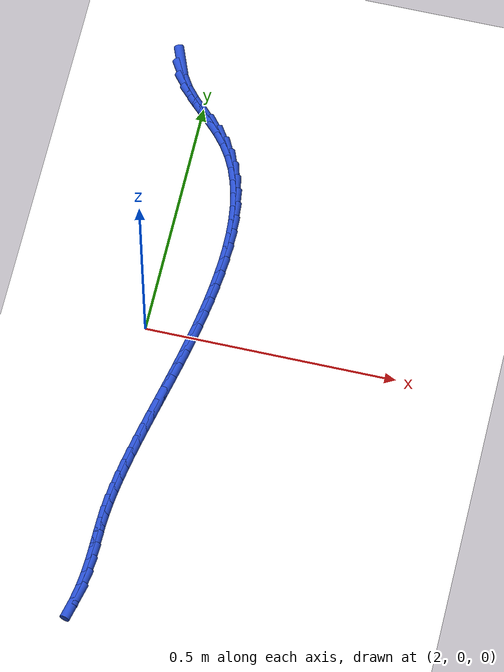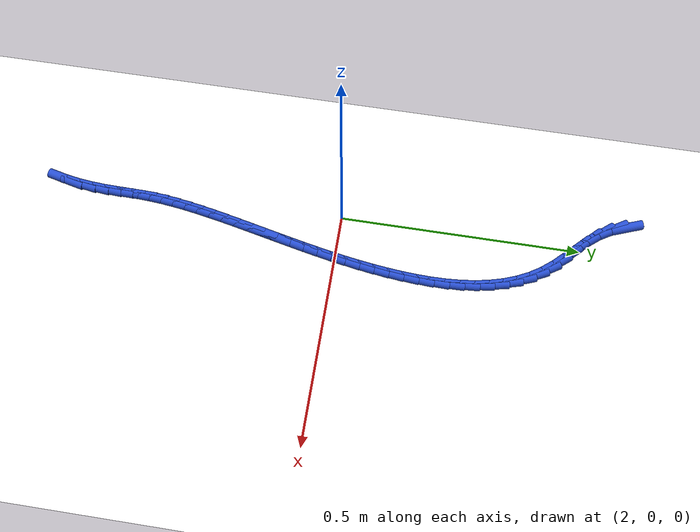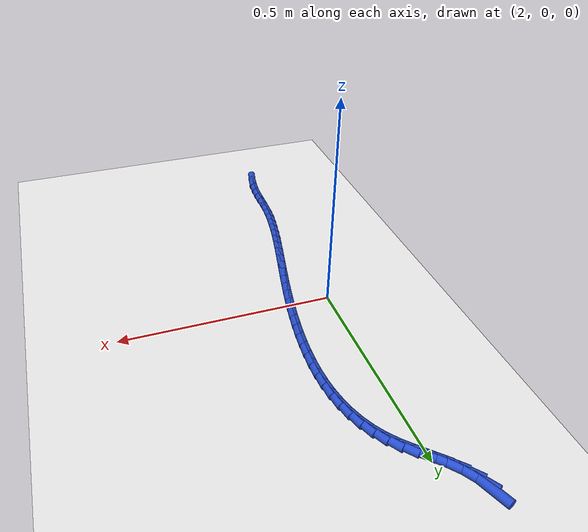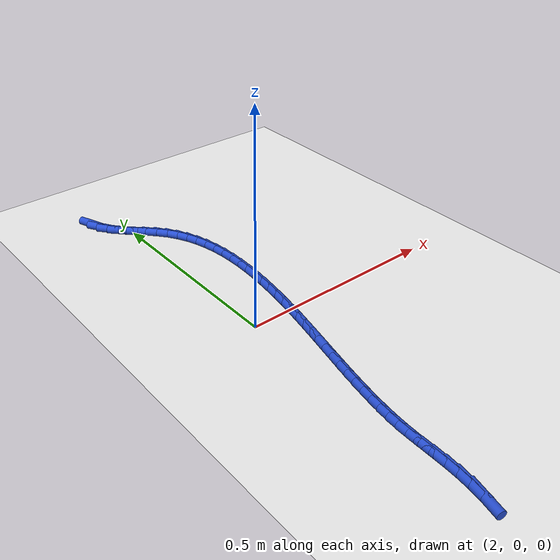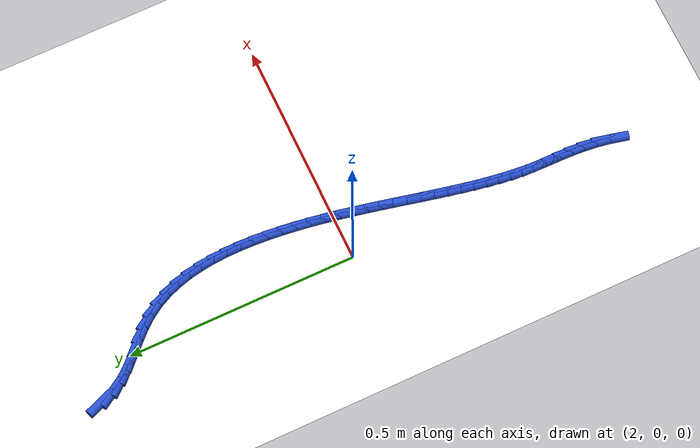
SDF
<sdf version="1.6">
 <world name="default">
  <model name="ground_plane">
   <static>1</static>
   <link name="link">
    <collision name="collision">
     <geometry><plane><normal>0 0 1</normal><size>100 100</size></plane></geometry>
     <surface><friction><ode><mu>100</mu><mu2>50</mu2></ode></friction></surface>
    </collision>
    <visual name="visual">
     <cast_shadows>0</cast_shadows>
     <geometry><plane><normal>0 0 1</normal><size>100 100</size></plane></geometry>
     <material>
      <script><uri>file://media/materials/scripts/gazebo.material</uri><name>Gazebo/WhiteGlow</name></script>
     </material>
    </visual>
   </link>
  </model>
  <model name="line">
   <link name="link_106">
    <pose>1.9338330937121684 0.5868516916136659 0.01 0 1.57 -1.2021719348651547</pose>
    <collision name="collision">
     <geometry><cylinder><radius>0.01</radius><length>0.08</length></cylinder></geometry>
    </collision>
    <visual name="visual">
     <material>
      <script><name>Gazebo/Blue</name><uri>file://media/materials/scripts/gazebo.material</uri></script>
     </material>
     <geometry><cylinder><radius>0.01</radius><length>0.08</length></cylinder></geometry>
    </visual>
   </link>
   <link name="link_107">
    <pose>1.944303896038175 0.5597450256206563 0.01 0 1.57 -1.0124511575455526</pose>
    <collision name="collision">
     <geometry><cylinder><radius>0.01</radius><length>0.08</length></cylinder></geometry>
    </collision>
    <visual name="visual">
     <material>
      <script><name>Gazebo/Blue</name><uri>file://media/materials/scripts/gazebo.material</uri></script>
     </material>
     <geometry><cylinder><radius>0.01</radius><length>0.08</length></cylinder></geometry>
    </visual>
   </link>
   <link name="link_108">
    <pose>1.9595149760566648 0.5353935296140433 0.01 0 1.57 -0.8733741682858733</pose>
    <collision name="collision">
     <geometry><cylinder><radius>0.01</radius><length>0.08</length></cylinder></geometry>
    </collision>
    <visual name="visual">
     <material>
      <script><name>Gazebo/Blue</name><uri>file://media/materials/scripts/gazebo.material</uri></script>
     </material>
     <geometry><cylinder><radius>0.01</radius><length>0.08</length></cylinder></geometry>
    </visual>
   </link>
   <link name="link_109">
    <pose>1.9782119501211322 0.5130792083223848 0.01 0 1.57 -0.7936824514714942</pose>
    <collision name="collision">
     <geometry><cylinder><radius>0.01</radius><length>0.08</length></cylinder></geometry>
    </collision>
    <visual name="visual">
     <material>
      <script><name>Gazebo/Blue</name><uri>file://media/materials/scripts/gazebo.material</uri></script>
     </material>
     <geometry><cylinder><radius>0.01</radius><length>0.08</length></cylinder></geometry>
    </visual>
   </link>
   <link name="link_110">
    <pose>1.9989690525468589 0.49197530936864375 0.01 0 1.57 -0.7694600899815649</pose>
    <collision name="collision">
     <geometry><cylinder><radius>0.01</radius><length>0.08</length></cylinder></geometry>
    </collision>
    <visual name="visual">
     <material>
      <script><name>Gazebo/Blue</name><uri>file://media/materials/scripts/gazebo.material</uri></script>
     </material>
     <geometry><cylinder><radius>0.01</radius><length>0.08</length></cylinder></geometry>
    </visual>
   </link>
   <link name="link_111">
    <pose>2.0203605176491255 0.47125508037578256 0.01 0 1.57 -0.7988840272417375</pose>
    <collision name="collision">
     <geometry><cylinder><radius>0.01</radius><length>0.08</length></cylinder></geometry>
    </collision>
    <visual name="visual">
     <material>
      <script><name>Gazebo/Blue</name><uri>file://media/materials/scripts/gazebo.material</uri></script>
     </material>
     <geometry><cylinder><radius>0.01</radius><length>0.08</length></cylinder></geometry>
    </visual>
   </link>
   <link name="link_112">
    <pose>2.0409605797432153 0.45009176896676384 0.01 0 1.57 -0.8834542762493433</pose>
    <collision name="collision">
     <geometry><cylinder><radius>0.01</radius><length>0.08</length></cylinder></geometry>
    </collision>
    <visual name="visual">
     <material>
      <script><name>Gazebo/Blue</name><uri>file://media/materials/scripts/gazebo.material</uri></script>
     </material>
     <geometry><cylinder><radius>0.01</radius><length>0.08</length></cylinder></geometry>
    </visual>
   </link>
   <link name="link_113">
    <pose>2.059364714404676 0.4276716913858878 0.01 0 1.57 -0.9982264871059049</pose>
    <collision name="collision">
     <geometry><cylinder><radius>0.01</radius><length>0.08</length></cylinder></geometry>
    </collision>
    <visual name="visual">
     <material>
      <script><name>Gazebo/Blue</name><uri>file://media/materials/scripts/gazebo.material</uri></script>
     </material>
     <geometry><cylinder><radius>0.01</radius><length>0.08</length></cylinder></geometry>
    </visual>
   </link>
   <link name="link_114">
    <pose>2.0748721948341133 0.4036141732443547 0.01 0 1.57 -1.1076831407689876</pose>
    <collision name="collision">
     <geometry><cylinder><radius>0.01</radius><length>0.08</length></cylinder></geometry>
    </collision>
    <visual name="visual">
     <material>
      <script><name>Gazebo/Blue</name><uri>file://media/materials/scripts/gazebo.material</uri></script>
     </material>
     <geometry><cylinder><radius>0.01</radius><length>0.08</length></cylinder></geometry>
    </visual>
   </link>
   <link name="link_115">
    <pose>2.0876316606838965 0.37806111030201073 0.01 0 1.57 -1.207712182106558</pose>
    <collision name="collision">
     <geometry><cylinder><radius>0.01</radius><length>0.08</length></cylinder></geometry>
    </collision>
    <visual name="visual">
     <material>
      <script><name>Gazebo/Blue</name><uri>file://media/materials/scripts/gazebo.material</uri></script>
     </material>
     <geometry><cylinder><radius>0.01</radius><length>0.08</length></cylinder></geometry>
    </visual>
   </link>
   <link name="link_116">
    <pose>2.097842429578781 0.35118557778842296 0.01 0 1.57 -1.2973108821973807</pose>
    <collision name="collision">
     <geometry><cylinder><radius>0.01</radius><length>0.08</length></cylinder></geometry>
    </collision>
    <visual name="visual">
     <material>
      <script><name>Gazebo/Blue</name><uri>file://media/materials/scripts/gazebo.material</uri></script>
     </material>
     <geometry><cylinder><radius>0.01</radius><length>0.08</length></cylinder></geometry>
    </visual>
   </link>
   <link name="link_117">
    <pose>2.105703819143523 0.3231606509331575 0.01 0 1.57 -1.3763506912121901</pose>
    <collision name="collision">
     <geometry><cylinder><radius>0.01</radius><length>0.08</length></cylinder></geometry>
    </collision>
    <visual name="visual">
     <material>
      <script><name>Gazebo/Blue</name><uri>file://media/materials/scripts/gazebo.material</uri></script>
     </material>
     <geometry><cylinder><radius>0.01</radius><length>0.08</length></cylinder></geometry>
    </visual>
   </link>
   <link name="link_118">
    <pose>2.111415147002878 0.29415940496578064 0.01 0 1.57 -1.4452845019392495</pose>
    <collision name="collision">
     <geometry><cylinder><radius>0.01</radius><length>0.08</length></cylinder></geometry>
    </collision>
    <visual name="visual">
     <material>
      <script><name>Gazebo/Blue</name><uri>file://media/materials/scripts/gazebo.material</uri></script>
     </material>
     <geometry><cylinder><radius>0.01</radius><length>0.08</length></cylinder></geometry>
    </visual>
   </link>
   <link name="link_119">
    <pose>2.115175730781602 0.2643549151158596 0.01 0 1.57 -1.5048765377039501</pose>
    <collision name="collision">
     <geometry><cylinder><radius>0.01</radius><length>0.08</length></cylinder></geometry>
    </collision>
    <visual name="visual">
     <material>
      <script><name>Gazebo/Blue</name><uri>file://media/materials/scripts/gazebo.material</uri></script>
     </material>
     <geometry><cylinder><radius>0.01</radius><length>0.08</length></cylinder></geometry>
    </visual>
   </link>
   <link name="link_120">
    <pose>2.117184888104452 0.2339202566129605 0.01 0 1.57 -1.5560022436241499</pose>
    <collision name="collision">
     <geometry><cylinder><radius>0.01</radius><length>0.08</length></cylinder></geometry>
    </collision>
    <visual name="visual">
     <material>
      <script><name>Gazebo/Blue</name><uri>file://media/materials/scripts/gazebo.material</uri></script>
     </material>
     <geometry><cylinder><radius>0.01</radius><length>0.08</length></cylinder></geometry>
    </visual>
   </link>
   <link name="link_121">
    <pose>2.1176419365961836 0.20302850468664996 0.01 0 1.57 1.5420722136107015</pose>
    <collision name="collision">
     <geometry><cylinder><radius>0.01</radius><length>0.08</length></cylinder></geometry>
    </collision>
    <visual name="visual">
     <material>
      <script><name>Gazebo/Blue</name><uri>file://media/materials/scripts/gazebo.material</uri></script>
     </material>
     <geometry><cylinder><radius>0.01</radius><length>0.08</length></cylinder></geometry>
    </visual>
   </link>
   <link name="link_122">
    <pose>2.116746193881552 0.17185273456649436 0.01 0 1.57 1.5053917749742443</pose>
    <collision name="collision">
     <geometry><cylinder><radius>0.01</radius><length>0.08</length></cylinder></geometry>
    </collision>
    <visual name="visual">
     <material>
      <script><name>Gazebo/Blue</name><uri>file://media/materials/scripts/gazebo.material</uri></script>
     </material>
     <geometry><cylinder><radius>0.01</radius><length>0.08</length></cylinder></geometry>
    </visual>
   </link>
   <link name="link_123">
    <pose>2.1146969775853144 0.14056602148205974 0.01 0 1.57 1.474880396611777</pose>
    <collision name="collision">
     <geometry><cylinder><radius>0.01</radius><length>0.08</length></cylinder></geometry>
    </collision>
    <visual name="visual">
     <material>
      <script><name>Gazebo/Blue</name><uri>file://media/materials/scripts/gazebo.material</uri></script>
     </material>
     <geometry><cylinder><radius>0.01</radius><length>0.08</length></cylinder></geometry>
    </visual>
   </link>
   <link name="link_124">
    <pose>2.111692685936342 0.10933999926450502 0.01 0 1.57 1.4490047697867123</pose>
    <collision name="collision">
     <geometry><cylinder><radius>0.01</radius><length>0.08</length></cylinder></geometry>
    </collision>
    <visual name="visual">
     <material>
      <script><name>Gazebo/Blue</name><uri>file://media/materials/scripts/gazebo.material</uri></script>
     </material>
     <geometry><cylinder><radius>0.01</radius><length>0.08</length></cylinder></geometry>
    </visual>
   </link>
   <link name="link_125">
    <pose>2.1078914042262835 0.07828310045752271 0.01 0 1.57 1.4261711757301927</pose>
    <collision name="collision">
     <geometry><cylinder><radius>0.01</radius><length>0.08</length></cylinder></geometry>
    </collision>
    <visual name="visual">
     <material>
      <script><name>Gazebo/Blue</name><uri>file://media/materials/scripts/gazebo.material</uri></script>
     </material>
     <geometry><cylinder><radius>0.01</radius><length>0.08</length></cylinder></geometry>
    </visual>
   </link>
   <link name="link_126">
    <pose>2.103396040096269 0.047417251912288995 0.01 0 1.57 1.4062611422343476</pose>
    <collision name="collision">
     <geometry><cylinder><radius>0.01</radius><length>0.08</length></cylinder></geometry>
    </collision>
    <visual name="visual">
     <material>
      <script><name>Gazebo/Blue</name><uri>file://media/materials/scripts/gazebo.material</uri></script>
     </material>
     <geometry><cylinder><radius>0.01</radius><length>0.08</length></cylinder></geometry>
    </visual>
   </link>
   <link name="link_127">
    <pose>2.098305516725162 0.01675813377203712 0.01 0 1.57 1.389263705185245</pose>
    <collision name="collision">
     <geometry><cylinder><radius>0.01</radius><length>0.08</length></cylinder></geometry>
    </collision>
    <visual name="visual">
     <material>
      <script><name>Gazebo/Blue</name><uri>file://media/materials/scripts/gazebo.material</uri></script>
     </material>
     <geometry><cylinder><radius>0.01</radius><length>0.08</length></cylinder></geometry>
    </visual>
   </link>
   <link name="link_128">
    <pose>2.0927187572918236 -0.013678573820001077 0.01 0 1.57 1.375173349856265</pose>
    <collision name="collision">
     <geometry><cylinder><radius>0.01</radius><length>0.08</length></cylinder></geometry>
    </collision>
    <visual name="visual">
     <material>
      <script><name>Gazebo/Blue</name><uri>file://media/materials/scripts/gazebo.material</uri></script>
     </material>
     <geometry><cylinder><radius>0.01</radius><length>0.08</length></cylinder></geometry>
    </visual>
   </link>
   <link name="link_129">
    <pose>2.0867346849751183 -0.04387719072059327 0.01 0 1.57 1.3639946271212693</pose>
    <collision name="collision">
     <geometry><cylinder><radius>0.01</radius><length>0.08</length></cylinder></geometry>
    </collision>
    <visual name="visual">
     <material>
      <script><name>Gazebo/Blue</name><uri>file://media/materials/scripts/gazebo.material</uri></script>
     </material>
     <geometry><cylinder><radius>0.01</radius><length>0.08</length></cylinder></geometry>
    </visual>
   </link>
   <link name="link_130">
    <pose>2.0804522229539084 -0.07382203678650719 0.01 0 1.57 1.3557462214383786</pose>
    <collision name="collision">
     <geometry><cylinder><radius>0.01</radius><length>0.08</length></cylinder></geometry>
    </collision>
    <visual name="visual">
     <material>
      <script><name>Gazebo/Blue</name><uri>file://media/materials/scripts/gazebo.material</uri></script>
     </material>
     <geometry><cylinder><radius>0.01</radius><length>0.08</length></cylinder></geometry>
    </visual>
   </link>
   <link name="link_131">
    <pose>2.0739702944070553 -0.10349743187451042 0.01 0 1.57 1.3504645923133194</pose>
    <collision name="collision">
     <geometry><cylinder><radius>0.01</radius><length>0.08</length></cylinder></geometry>
    </collision>
    <visual name="visual">
     <material>
      <script><name>Gazebo/Blue</name><uri>file://media/materials/scripts/gazebo.material</uri></script>
     </material>
     <geometry><cylinder><radius>0.01</radius><length>0.08</length></cylinder></geometry>
    </visual>
   </link>
   <link name="link_132">
    <pose>2.0673878225134223 -0.13288769584137078 0.01 0 1.57 1.3482072992607566</pose>
    <collision name="collision">
     <geometry><cylinder><radius>0.01</radius><length>0.08</length></cylinder></geometry>
    </collision>
    <visual name="visual">
     <material>
      <script><name>Gazebo/Blue</name><uri>file://media/materials/scripts/gazebo.material</uri></script>
     </material>
     <geometry><cylinder><radius>0.01</radius><length>0.08</length></cylinder></geometry>
    </visual>
   </link>
   <link name="link_133">
    <pose>2.0608037304518723 -0.16197714854385675 0.01 0 1.57 1.349056092228969</pose>
    <collision name="collision">
     <geometry><cylinder><radius>0.01</radius><length>0.08</length></cylinder></geometry>
    </collision>
    <visual name="visual">
     <material>
      <script><name>Gazebo/Blue</name><uri>file://media/materials/scripts/gazebo.material</uri></script>
     </material>
     <geometry><cylinder><radius>0.01</radius><length>0.08</length></cylinder></geometry>
    </visual>
   </link>
   <link name="link_134">
    <pose>2.0543169414012676 -0.19075010983873425 0.01 0 1.57 1.3531198047028044</pose>
    <collision name="collision">
     <geometry><cylinder><radius>0.01</radius><length>0.08</length></cylinder></geometry>
    </collision>
    <visual name="visual">
     <material>
      <script><name>Gazebo/Blue</name><uri>file://media/materials/scripts/gazebo.material</uri></script>
     </material>
     <geometry><cylinder><radius>0.01</radius><length>0.08</length></cylinder></geometry>
    </visual>
   </link>
   <link name="link_135">
    <pose>2.048026378540472 -0.219190899582772 0.01 0 1.57 1.360537021560779</pose>
    <collision name="collision">
     <geometry><cylinder><radius>0.01</radius><length>0.08</length></cylinder></geometry>
    </collision>
    <visual name="visual">
     <material>
      <script><name>Gazebo/Blue</name><uri>file://media/materials/scripts/gazebo.material</uri></script>
     </material>
     <geometry><cylinder><radius>0.01</radius><length>0.08</length></cylinder></geometry>
    </visual>
   </link>
   <link name="link_136">
    <pose>2.042030965048346 -0.24728383763273754 0.01 0 1.57 1.3714784009255272</pose>
    <collision name="collision">
     <geometry><cylinder><radius>0.01</radius><length>0.08</length></cylinder></geometry>
    </collision>
    <visual name="visual">
     <material>
      <script><name>Gazebo/Blue</name><uri>file://media/materials/scripts/gazebo.material</uri></script>
     </material>
     <geometry><cylinder><radius>0.01</radius><length>0.08</length></cylinder></geometry>
    </visual>
   </link>
   <link name="link_137">
    <pose>2.036429624103754 -0.2750132438453986 0.01 0 1.57 1.38614839767027</pose>
    <collision name="collision">
     <geometry><cylinder><radius>0.01</radius><length>0.08</length></cylinder></geometry>
    </collision>
    <visual name="visual">
     <material>
      <script><name>Gazebo/Blue</name><uri>file://media/materials/scripts/gazebo.material</uri></script>
     </material>
     <geometry><cylinder><radius>0.01</radius><length>0.08</length></cylinder></geometry>
    </visual>
   </link>
   <link name="link_138">
    <pose>2.0313212788855584 -0.30236343807752286 0.01 0 1.57 1.4047859516281196</pose>
    <collision name="collision">
     <geometry><cylinder><radius>0.01</radius><length>0.08</length></cylinder></geometry>
    </collision>
    <visual name="visual">
     <material>
      <script><name>Gazebo/Blue</name><uri>file://media/materials/scripts/gazebo.material</uri></script>
     </material>
     <geometry><cylinder><radius>0.01</radius><length>0.08</length></cylinder></geometry>
    </visual>
   </link>
   <link name="link_139">
    <pose>2.0268048525726208 -0.32931874018587803 0.01 0 1.57 1.4276634503381482</pose>
    <collision name="collision">
     <geometry><cylinder><radius>0.01</radius><length>0.08</length></cylinder></geometry>
    </collision>
    <visual name="visual">
     <material>
      <script><name>Gazebo/Blue</name><uri>file://media/materials/scripts/gazebo.material</uri></script>
     </material>
     <geometry><cylinder><radius>0.01</radius><length>0.08</length></cylinder></geometry>
    </visual>
   </link>
   <link name="link_140">
    <pose>2.0229792683438044 -0.3558634700272326 0.01 0 1.57 1.455082943066619</pose>
    <collision name="collision">
     <geometry><cylinder><radius>0.01</radius><length>0.08</length></cylinder></geometry>
    </collision>
    <visual name="visual">
     <material>
      <script><name>Gazebo/Blue</name><uri>file://media/materials/scripts/gazebo.material</uri></script>
     </material>
     <geometry><cylinder><radius>0.01</radius><length>0.08</length></cylinder></geometry>
    </visual>
   </link>
   <link name="link_141">
    <pose>2.0199434493779727 -0.3819819474583527 0.01 0 1.57 1.4873681749645784</pose>
    <collision name="collision">
     <geometry><cylinder><radius>0.01</radius><length>0.08</length></cylinder></geometry>
    </collision>
    <visual name="visual">
     <material>
      <script><name>Gazebo/Blue</name><uri>file://media/materials/scripts/gazebo.material</uri></script>
     </material>
     <geometry><cylinder><radius>0.01</radius><length>0.08</length></cylinder></geometry>
    </visual>
   </link>
   <link name="link_142">
    <pose>2.017796318853987 -0.4076584923360068 0.01 0 1.57 1.5238185495792869</pose>
    <collision name="collision">
     <geometry><cylinder><radius>0.01</radius><length>0.08</length></cylinder></geometry>
    </collision>
    <visual name="visual">
     <material>
      <script><name>Gazebo/Blue</name><uri>file://media/materials/scripts/gazebo.material</uri></script>
     </material>
     <geometry><cylinder><radius>0.01</radius><length>0.08</length></cylinder></geometry>
    </visual>
   </link>
   <link name="link_143">
    <pose>2.0166099071466217 -0.4328946546372017 0.01 0 1.57 1.5506337869230546</pose>
    <collision name="collision">
     <geometry><cylinder><radius>0.01</radius><length>0.08</length></cylinder></geometry>
    </collision>
    <visual name="visual">
     <material>
      <script><name>Gazebo/Blue</name><uri>file://media/materials/scripts/gazebo.material</uri></script>
     </material>
     <geometry><cylinder><radius>0.01</radius><length>0.08</length></cylinder></geometry>
    </visual>
   </link>
   <link name="link_144">
    <pose>2.01610532846302 -0.4579168150312786 0.01 0 1.57 1.556997513603541</pose>
    <collision name="collision">
     <geometry><cylinder><radius>0.01</radius><length>0.08</length></cylinder></geometry>
    </collision>
    <visual name="visual">
     <material>
      <script><name>Gazebo/Blue</name><uri>file://media/materials/scripts/gazebo.material</uri></script>
     </material>
     <geometry><cylinder><radius>0.01</radius><length>0.08</length></cylinder></geometry>
    </visual>
   </link>
   <link name="link_145">
    <pose>2.015757684509666 -0.4831089734879933 0.01 0 1.57 1.5428151690896739</pose>
    <collision name="collision">
     <geometry><cylinder><radius>0.01</radius><length>0.08</length></cylinder></geometry>
    </collision>
    <visual name="visual">
     <material>
      <script><name>Gazebo/Blue</name><uri>file://media/materials/scripts/gazebo.material</uri></script>
     </material>
     <geometry><cylinder><radius>0.01</radius><length>0.08</length></cylinder></geometry>
    </visual>
   </link>
   <link name="link_146">
    <pose>2.015036998097318 -0.5088583840068319 0.01 0 1.57 1.510044358395439</pose>
    <collision name="collision">
     <geometry><cylinder><radius>0.01</radius><length>0.08</length></cylinder></geometry>
    </collision>
    <visual name="visual">
     <material>
      <script><name>Gazebo/Blue</name><uri>file://media/materials/scripts/gazebo.material</uri></script>
     </material>
     <geometry><cylinder><radius>0.01</radius><length>0.08</length></cylinder></geometry>
    </visual>
   </link>
   <link name="link_147">
    <pose>2.013413292036734 -0.5355523005872811 0.01 0 1.57 1.4621578071560255</pose>
    <collision name="collision">
     <geometry><cylinder><radius>0.01</radius><length>0.08</length></cylinder></geometry>
    </collision>
    <visual name="visual">
     <material>
      <script><name>Gazebo/Blue</name><uri>file://media/materials/scripts/gazebo.material</uri></script>
     </material>
     <geometry><cylinder><radius>0.01</radius><length>0.08</length></cylinder></geometry>
    </visual>
   </link>
   <link name="link_148">
    <pose>2.0103565891386714 -0.5635779772288272 0.01 0 1.57 1.403612798626005</pose>
    <collision name="collision">
     <geometry><cylinder><radius>0.01</radius><length>0.08</length></cylinder></geometry>
    </collision>
    <visual name="visual">
     <material>
      <script><name>Gazebo/Blue</name><uri>file://media/materials/scripts/gazebo.material</uri></script>
     </material>
     <geometry><cylinder><radius>0.01</radius><length>0.08</length></cylinder></geometry>
    </visual>
   </link>
   <link name="link_149">
    <pose>2.005336912213888 -0.5933226679309576 0.01 0 1.57 1.3391617677887528</pose>
    <collision name="collision">
     <geometry><cylinder><radius>0.01</radius><length>0.08</length></cylinder></geometry>
    </collision>
    <visual name="visual">
     <material>
      <script><name>Gazebo/Blue</name><uri>file://media/materials/scripts/gazebo.material</uri></script>
     </material>
     <geometry><cylinder><radius>0.01</radius><length>0.08</length></cylinder></geometry>
    </visual>
   </link>
  </model>
 </world>
</sdf>
